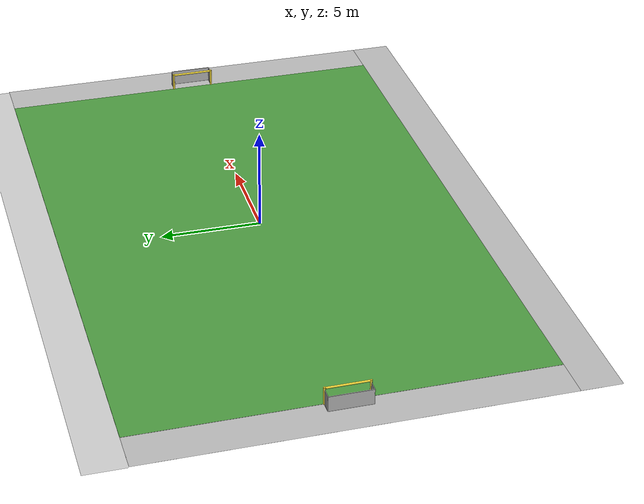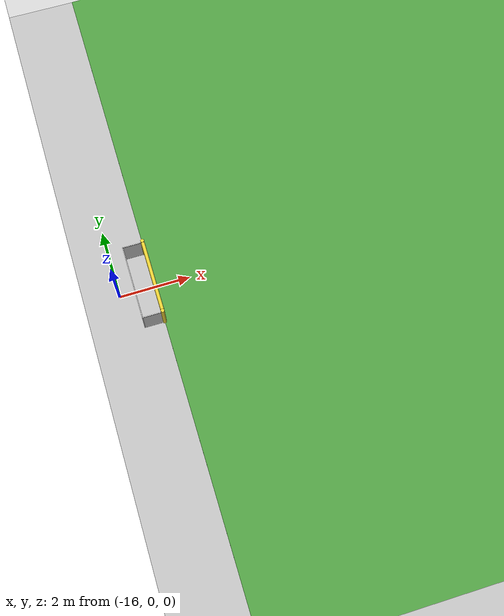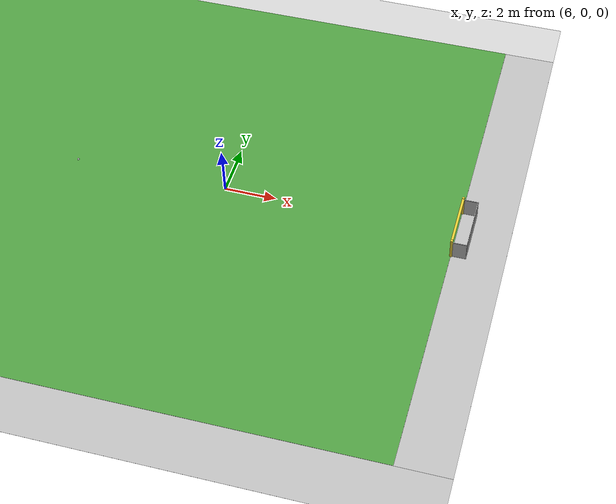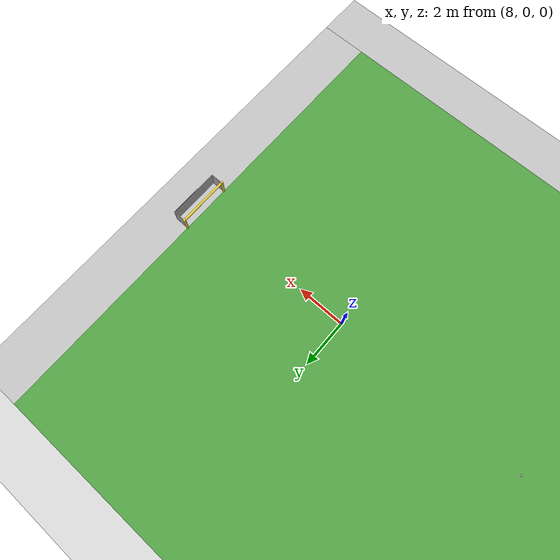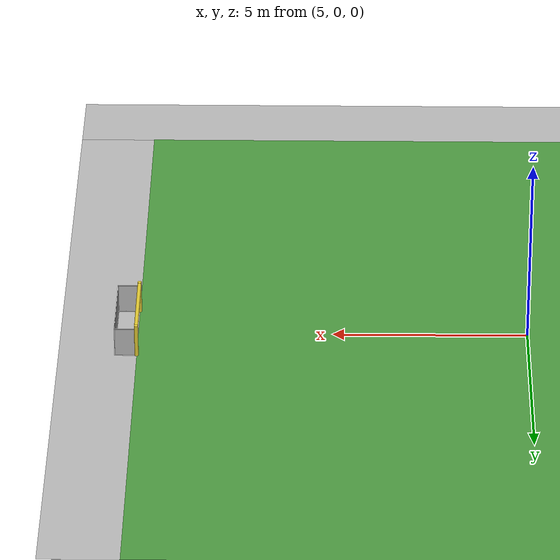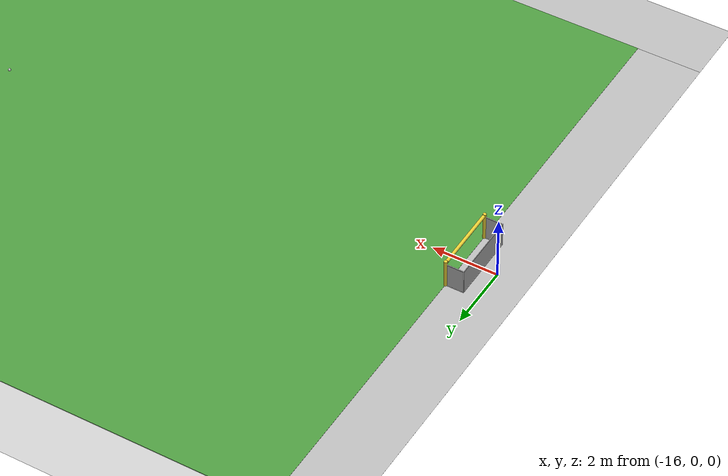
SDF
<?xml version="1.0" ?>

<sdf version="1.6">
    <world name="default">
	<physics type="ode">
		<max_step_size>0.001</max_step_size>
		<real_time_update_rate>1000</real_time_update_rate>
	</physics>
<!-- RoboCup 3D simulator field -->

<!-- Remove the grid -->
	<scene>
		<grid>false</grid>
		<origin_visual>false</origin_visual>
		<sky></sky>
		<ambient>0.6 0.6 0.6 1</ambient>
		<background>0.7 0.7 0.8 1</background>
		<shadows>1</shadows>
	</scene>

	<include>
		<pose>0 0 -0.01 0 0 0</pose>
		<uri>model://robocup_3Dsim_field</uri>
	</include>

	<!-- RoboCup 3D simulator left goal -->
	<include>
		<name>left_goal</name>
		<pose>-15.0 0 0 0 0 3.1416</pose>
		<uri>model://robocup_3Dsim_goal</uri>
	</include>

	<!-- RoboCup 3D simulator right goal -->
	<include>
		<name>right_goal</name>
		<pose>15.0 0 0 0 0 0</pose>
		<uri>model://robocup_3Dsim_goal</uri>
	</include>

	<!-- RoboCup 3D simulator ball -->
	<include>
		<pose>0 0 0.042 0 0 0</pose>
		<uri>model://robocup_3Dsim_ball</uri>
	</include>

	<!-- global light source -->
	<include>
		<uri>model://sun</uri>
	</include>

	<!-- A global light source-->
	<light type="directional" name="sun1">
		<cast_shadows>true</cast_shadows>
		<pose>0 0 100 0 0 0</pose>
		<diffuse>0.5 0.5 0.5 1</diffuse>
		<specular>0.2 0.2 0.2 1</specular>
		<attenuation>
			<range>100</range>
			<constant>0.1</constant>
			<linear>0.01</linear>
			<quadratic>0.001</quadratic>
		</attenuation>
	<direction>-0.5 0.1 -0.9</direction>
	</light>

    </world>
</sdf>

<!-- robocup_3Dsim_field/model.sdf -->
<sdf version="1.5">
  <model name="robocup_3d_field">
    <static>true</static>
    <link name="field">
      <pose>0 0 0.01 0 0 0</pose>
      <collision name="collision">
        <geometry>
          <plane>
            <normal>0 0 1</normal>
            <size>30.0 20.0</size>
          </plane>
        </geometry>
        <surface>
          <friction>
            <ode>
              <mu>100</mu>
              <mu2>50</mu2>
            </ode>
          </friction>
        </surface>
      </collision>
      <visual name="base1">
        <pose>0 11 0.001 0 0 0</pose>
        <cast_shadows>false</cast_shadows>
        <geometry>
          <plane>
            <normal>0 0 1</normal>
            <size>34.0 2.0</size>
          </plane>
        </geometry>
        <material>
          <script>
            <uri>model://../model_source/models/robocup_3Dsim_field/materials/scripts/</uri>
            <uri>model://../model_source/models/robocup_3Dsim_field/materials/textures/</uri>
            <name>RoboCup/FieldBorder</name>
          </script>
        </material>
      </visual>
      <visual name="base2">
        <pose>0 -11 0.001 0 0 0</pose>
        <cast_shadows>false</cast_shadows>
        <geometry>
          <plane>
            <normal>0 0 1</normal>
            <size>34.0 2.0</size>
          </plane>
        </geometry>
        <material>
          <script>
            <uri>model://../model_source/models/robocup_3Dsim_field/materials/scripts/</uri>
            <uri>model://../model_source/models/robocup_3Dsim_field/materials/textures/</uri>
            <name>RoboCup/FieldBorder</name>
          </script>
        </material>
      </visual>
      <visual name="base3">
        <pose>16 0 0.001 0 0 0</pose>
        <cast_shadows>false</cast_shadows>
        <geometry>
          <plane>
            <normal>0 0 1</normal>
            <size>2.0 20.0</size>
          </plane>
        </geometry>
        <material>
          <script>
            <uri>model://../model_source/models/robocup_3Dsim_field/materials/scripts/</uri>
            <uri>model://../model_source/models/robocup_3Dsim_field/materials/textures/</uri>
            <name>RoboCup/FieldBorder</name>
          </script>
        </material>
      </visual>
      <visual name="base4">
        <pose>-16 0 0.001 0 0 0</pose>
        <cast_shadows>false</cast_shadows>
        <geometry>
          <plane>
            <normal>0 0 1</normal>
            <size>2.0 20.0</size>
          </plane>
        </geometry>
        <material>
          <script>
            <uri>model://../model_source/models/robocup_3Dsim_field/materials/scripts/</uri>
            <uri>model://../model_source/models/robocup_3Dsim_field/materials/textures/</uri>
            <name>RoboCup/FieldBorder</name>
          </script>
        </material>
      </visual>
      <visual name="carpet">
        <cast_shadows>false</cast_shadows>
        <geometry>
          <plane>
            <normal>0 0 1</normal>
            <size>30.0 20.0</size>
          </plane>
        </geometry>
        <material>
          <script>
            <uri>model://../model_source/models/robocup_3Dsim_field/materials/scripts/</uri>
            <uri>model://../model_source/models/robocup_3Dsim_field/materials/textures/</uri>
            <name>RoboCup/Grass</name>
          </script>
        </material>
      </visual>
    </link>
  </model>
</sdf>

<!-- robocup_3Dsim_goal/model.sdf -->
<sdf version="1.5">
  <model name="robocup_3d_goal">
    <static>true</static>
    <link name="left_post">
      <pose>0 1.05 0.45 0 0 0</pose>
      <collision name="collision">
        <geometry>
          <cylinder>
            <radius>0.05</radius>
            <length>0.9</length>
          </cylinder>
        </geometry>
      </collision>
      <visual name="visual">
        <geometry>
          <cylinder>
            <radius>0.05</radius>
            <length>0.9</length>
          </cylinder>
        </geometry>
        <material>
          <script>
            <uri>file://media/materials/scripts/gazebo.material</uri>
            <name>Gazebo/ZincYellow</name>
          </script>
        </material>
      </visual>
    </link>
    <link name="left_support_horiz_lower">
      <pose>0.30 1.05 0.01 0 0 0</pose>
      <collision name="collision">
        <geometry>
          <box>
            <size>0.50 0.02 0.02</size>
          </box>
        </geometry>
      </collision>
      <visual name="visual">
        <geometry>
          <box>
            <size>0.50 0.02 0.02</size>
          </box>
        </geometry>
        <material>
          <script>
            <uri>file://media/materials/scripts/gazebo.material</uri>
            <name>Gazebo/White</name>
          </script>
        </material>
      </visual>
    </link>
    <link name="left_support_horiz_upper">
      <pose>0.30 1.05 0.79 0 0 0</pose>
      <collision name="collision">
        <geometry>
          <box>
            <size>0.50 0.02 0.02</size>
          </box>
        </geometry>
      </collision>
      <visual name="visual">
        <geometry>
          <box>
            <size>0.50 0.02 0.02</size>
          </box>
        </geometry>
        <material>
          <script>
            <uri>file://media/materials/scripts/gazebo.material</uri>
            <name>Gazebo/White</name>
          </script>
        </material>
      </visual>
    </link>
    <link name="left_support_vertical">
      <pose>0.56 1.05 0.4 0 1.5708 0</pose>
      <collision name="collision">
        <geometry>
          <box>
            <size>0.80 0.02 0.02</size>
          </box>
        </geometry>
      </collision>
      <visual name="visual">
        <geometry>
          <box>
            <size>0.80 0.02 0.02</size>
          </box>
        </geometry>
        <material>
          <script>
            <uri>file://media/materials/scripts/gazebo.material</uri>
            <name>Gazebo/White</name>
          </script>
        </material>
      </visual>
    </link>
    <link name="right_support_horiz_lower">
      <pose>0.30 -1.05 0.01 0 0 0</pose>
      <collision name="collision">
        <geometry>
          <box>
            <size>0.50 0.02 0.02</size>
          </box>
        </geometry>
      </collision>
      <visual name="visual">
        <geometry>
          <box>
            <size>0.50 0.02 0.02</size>
          </box>
        </geometry>
        <material>
          <script>
            <uri>file://media/materials/scripts/gazebo.material</uri>
            <name>Gazebo/White</name>
          </script>
        </material>
      </visual>
    </link>
    <link name="right_support_horiz_upper">
      <pose>0.30 -1.05 0.79 0 0 0</pose>
      <collision name="collision">
        <geometry>
          <box>
            <size>0.50 0.02 0.02</size>
          </box>
        </geometry>
      </collision>
      <visual name="visual">
        <geometry>
          <box>
            <size>0.50 0.02 0.02</size>
          </box>
        </geometry>
        <material>
          <script>
            <uri>file://media/materials/scripts/gazebo.material</uri>
            <name>Gazebo/White</name>
          </script>
        </material>
      </visual>
    </link>
    <link name="right_support_vertical">
      <pose>0.56 -1.05 0.4 0 1.5708 0</pose>
      <collision name="collision">
        <geometry>
          <box>
            <size>0.80 0.02 0.02</size>
          </box>
        </geometry>
      </collision>
      <visual name="visual">
        <geometry>
          <box>
            <size>0.80 0.02 0.02</size>
          </box>
        </geometry>
        <material>
          <script>
            <uri>file://media/materials/scripts/gazebo.material</uri>
            <name>Gazebo/White</name>
          </script>
        </material>
      </visual>
    </link>
    <link name="center_support_horiz_lower">
      <pose>0.56 0 0.01 0 1.5708 0</pose>
      <collision name="collision">
        <geometry>
          <box>
            <size>0.02 2.08 0.02</size>
          </box>
        </geometry>
      </collision>
      <visual name="visual">
        <geometry>
          <box>
            <size>0.02 2.08 0.02</size>
          </box>
        </geometry>
        <material>
          <script>
            <uri>file://media/materials/scripts/gazebo.material</uri>
            <name>Gazebo/White</name>
          </script>
        </material>
      </visual>
    </link>
    <link name="center_support_horiz_upper">
      <pose>0.56 0 0.79 0 1.5708 0</pose>
      <collision name="collision">
        <geometry>
          <box>
            <size>0.02 2.08 0.02</size>
          </box>
        </geometry>
      </collision>
      <visual name="visual">
        <geometry>
          <box>
            <size>0.02 2.08 0.02</size>
          </box>
        </geometry>
        <material>
          <script>
            <uri>file://media/materials/scripts/gazebo.material</uri>
            <name>Gazebo/White</name>
          </script>
        </material>
      </visual>
    </link>
    <link name="right_post">
      <pose>0 -1.05 0.45 0 0 0</pose>
      <collision name="collision">
        <geometry>
          <cylinder>
            <radius>0.05</radius>
            <length>0.9</length>
          </cylinder>
        </geometry>
      </collision>
      <visual name="visual">
        <geometry>
          <cylinder>
            <radius>0.05</radius>
            <length>0.9</length>
          </cylinder>
        </geometry>
        <material>
          <script>
            <uri>file://media/materials/scripts/gazebo.material</uri>
            <name>Gazebo/ZincYellow</name>
          </script>
        </material>
      </visual>
    </link>
    <link name="crossbar">
      <pose>0 0 0.85 1.57 1.57 0</pose>
      <collision name="collision">
        <geometry>
          <cylinder>
            <radius>0.05</radius>
            <length>2.0</length>
          </cylinder>
        </geometry>
      </collision>
      <visual name="visual">
        <geometry>
          <cylinder>
            <radius>0.05</radius>
            <length>2.0</length>
          </cylinder>
        </geometry>
        <material>
          <script>
            <uri>file://media/materials/scripts/gazebo.material</uri>
            <name>Gazebo/ZincYellow</name>
          </script>
        </material>
      </visual>
    </link>
    <link name="center_net">
      <pose>0.56 0 0.40 0 0 0</pose>
      <collision name="collision">
        <geometry>
          <box>
            <size>0.01 2.1 0.80</size>
          </box>
        </geometry>
      </collision>
      <visual name="visual">
        <geometry>
          <box>
            <size>0.01 2.1 0.80</size>
          </box>
        </geometry>
        <material>
          <script>
            <uri>model://../model_source/models/robocup09_spl_field/materials/scripts/</uri>
            <uri>model://../model_source/models/robocup09_spl_field/materials/textures/</uri>
            <name>RoboCup/Net</name>
          </script>
        </material>
      </visual>
    </link>
    <link name="left_net">
      <pose>0.30 1.05 0.40 0 0 0</pose>
      <collision name="collision">
        <geometry>
          <box>
            <size>0.50 0.01 0.76</size>
          </box>
        </geometry>
      </collision>
      <visual name="visual">
        <geometry>
          <box>
            <size>0.50 0.01 0.76</size>
          </box>
        </geometry>
        <material>
          <script>
            <uri>model://../model_source/models/robocup09_spl_field/materials/scripts/</uri>
            <uri>model://../model_source/models/robocup09_spl_field/materials/textures/</uri>
            <name>RoboCup/Net</name>
          </script>
        </material>
      </visual>
    </link>
    <link name="right_net">
      <pose>0.30 -1.05 0.40 0 0 0</pose>
      <collision name="collision">
        <geometry>
          <box>
            <size>0.50 0.01 0.76</size>
          </box>
        </geometry>
      </collision>
      <visual name="visual">
        <geometry>
          <box>
            <size>0.50 0.01 0.76</size>
          </box>
        </geometry>
        <material>
          <script>
            <uri>model://../model_source/models/robocup09_spl_field/materials/scripts/</uri>
            <uri>model://../model_source/models/robocup09_spl_field/materials/textures/</uri>
            <name>RoboCup/Net</name>
          </script>
        </material>
      </visual>
    </link>
  </model>
</sdf>

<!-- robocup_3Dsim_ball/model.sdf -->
<sdf version='1.6'>
  <model name='soccer_ball'>
    <link name='soccer_ball_link'>
      <pose>0 0 0 0 0 0</pose>
      <!-- inertia based on solid sphere 2/5 mr^2 -->
      <inertial>
        <mass>0.026</mass>
        <inertia>
          <ixx>1.664e-05</ixx>
          <iyy>1.664e-05</iyy>
          <izz>1.664e-05</izz>
          <ixy>0</ixy>
          <ixz>0</ixz>
          <iyz>0</iyz>
        </inertia>
      </inertial>
      <!-- approximate rolling friction -->
      <velocity_decay>
        <linear>0.0001</linear>
        <angular>0.005</angular>
      </velocity_decay>
      <visual name='visual'>
        <geometry>
          <mesh>
            <scale>0.042 0.042 0.042</scale>
            <uri>model://robocup_3Dsim_ball/meshes/ball.dae</uri>
          </mesh>
        </geometry>
      </visual>
      <collision name='collision'>
        <geometry>
          <sphere>
            <radius>0.042</radius>
          </sphere>
        </geometry>
        <surface>
          <friction>
            <ode>
              <mu>0.9</mu>
              <mu2>0.9</mu2>
              <fdir1>1 0 0</fdir1>
              <slip1>0.6</slip1>
              <slip2>0</slip2>
            </ode>
            <torsional>
              <coefficient>1</coefficient>
              <patch_radius>0</patch_radius>
              <surface_radius>0.01</surface_radius>
              <use_patch_radius>0</use_patch_radius>
              <ode>
                <slip>0</slip>
              </ode>
            </torsional>
          </friction>
          <bounce>
            <restitution_coefficient>0.8</restitution_coefficient>
            <threshold>0.01</threshold>
          </bounce>
          <contact>
	    <ode>
              <soft_cfm>0.05</soft_cfm>
              <soft_erp>0.5</soft_erp>
              <kp>1e+13</kp>
              <kd>1</kd>
              <max_vel>100</max_vel>
              <min_depth>0.001</min_depth>
            </ode>
            <bullet>
              <split_impulse>1</split_impulse>
              <split_impulse_penetration_threshold>-0.01</split_impulse_penetration_threshold>
              <soft_cfm>0.05</soft_cfm>
              <soft_erp>0.5</soft_erp>
              <kp>1e+13</kp>
              <kd>1</kd>
            </bullet>
          </contact>
        </surface>
      </collision>
    </link>
    <static>0</static>
    <pose frame=''>0 0 0.042 0 0 0</pose>
  </model>
</sdf>
